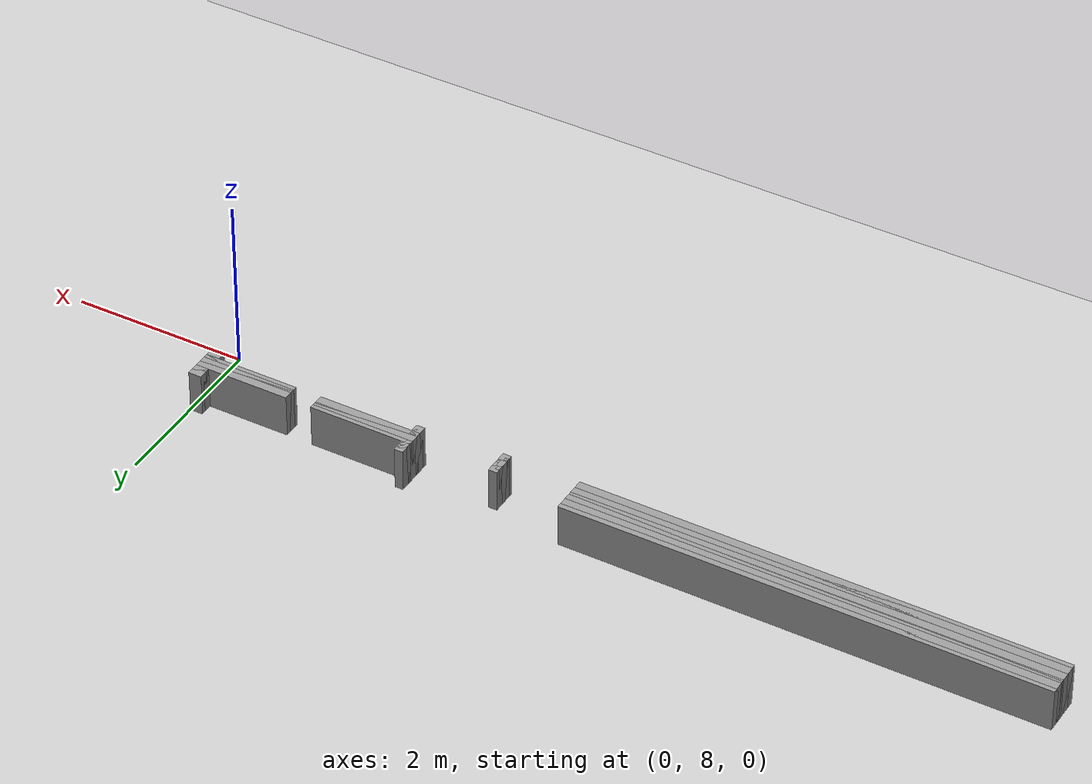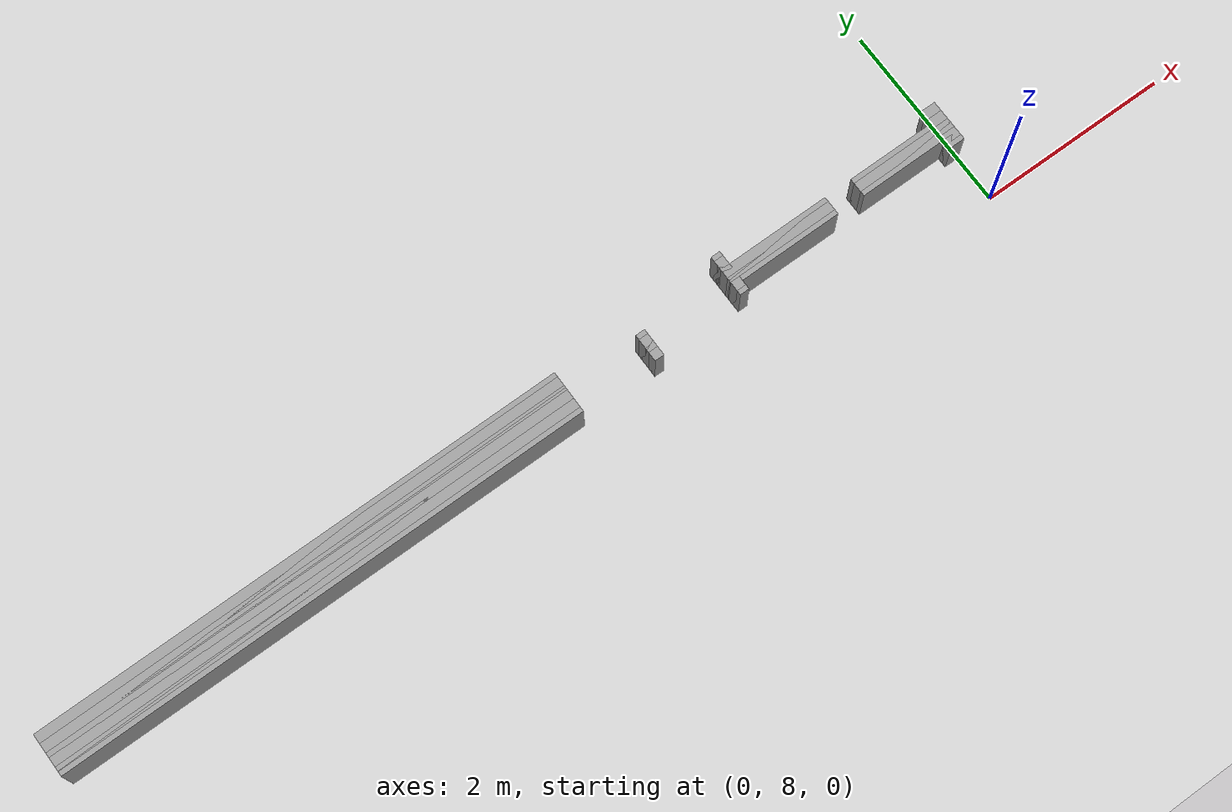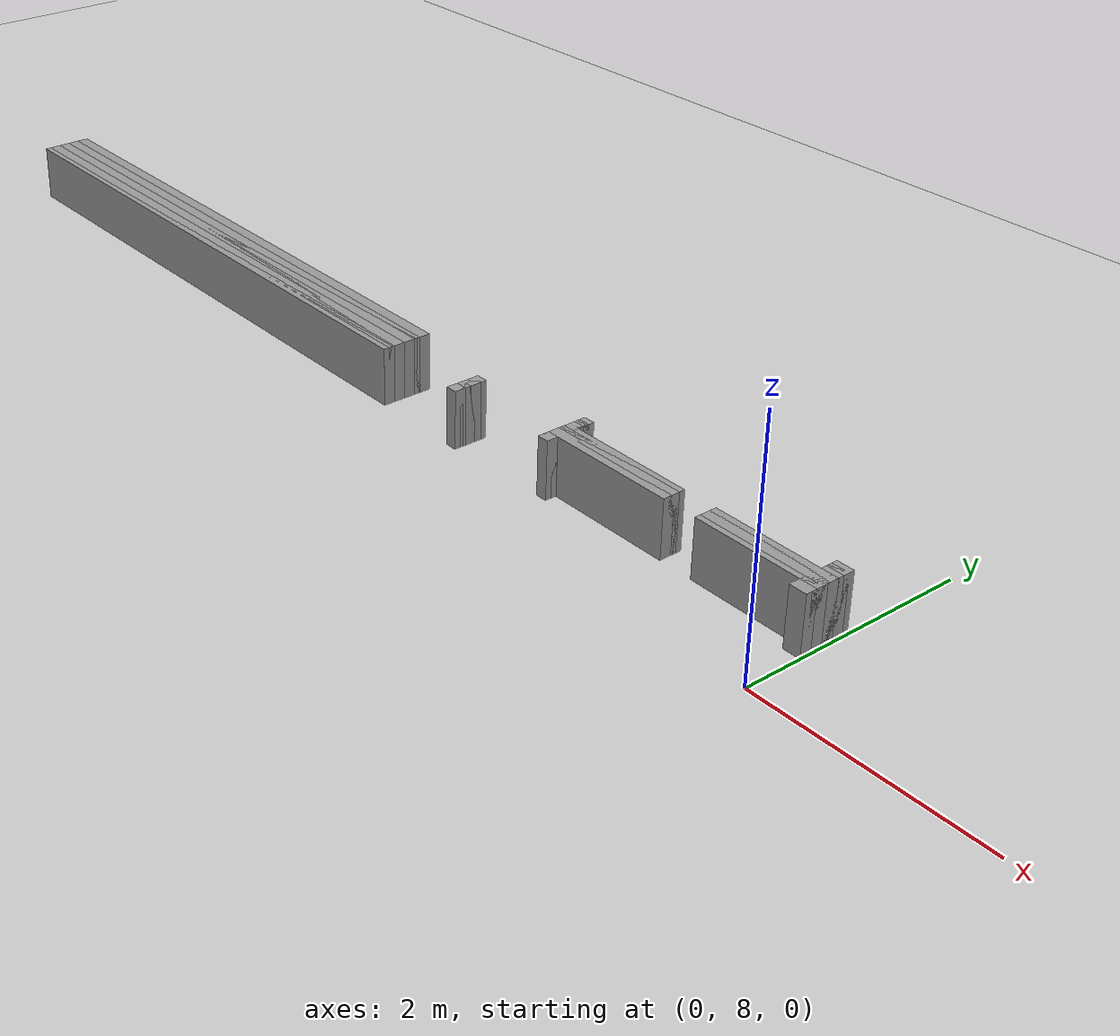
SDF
<sdf version="1.6">
 <world name="GridMap">
  <include><uri>model://sun</uri></include>
  <include><uri>model://ground_plane</uri></include>
  <model name="GridMap">
   <link name="Wall_(71.0,170.0)">
    <collision name="Wall_(71.0,170.0)_Collision">
     <geometry><box><size>0.1 0.1 0.5</size></box></geometry>
     <pose>-3.5500000000000003 8.5 0.25 0 -0 0</pose>
    </collision>
    <inertial>
     <mass>0.5</mass>
     <pose>0 0.01 0 0 0 0</pose>
     <inertia><ixx>0.004</ixx><ixy>0.001</ixy><ixz>0</ixz><iyy>0.006</iyy><iyz>0</iyz><izz>0.007</izz></inertia>
    </inertial>
    <visual name="Wall_(71.0,170.0)_Visual">
     <geometry><box><size>0.1 0.1 0.5</size></box></geometry>
     <pose>-3.5500000000000003 8.5 0.25 0 -0 0</pose>
     <material>
      <script><uri>file://media/materials/scripts/gazebo.material</uri><name>Gazebo/Grey</name></script>
      <ambient>1 1 1 1</ambient>
     </material>
     <meta><layer>0</layer></meta>
    </visual>
   </link>
   <link name="Wall_(143.5,170.0)">
    <collision name="Wall_(143.5,170.0)_Collision">
     <geometry><box><size>5.550000000000001 0.1 0.5</size></box></geometry>
     <pose>-7.175000000000001 8.5 0.25 0 -0 0</pose>
    </collision>
    <inertial>
     <mass>0.5</mass>
     <pose>0 0.01 0 0 0 0</pose>
     <inertia><ixx>0.004</ixx><ixy>0.001</ixy><ixz>0</ixz><iyy>0.006</iyy><iyz>0</iyz><izz>0.007</izz></inertia>
    </inertial>
    <visual name="Wall_(143.5,170.0)_Visual">
     <geometry><box><size>5.550000000000001 0.1 0.5</size></box></geometry>
     <pose>-7.175000000000001 8.5 0.25 0 -0 0</pose>
     <material>
      <script><uri>file://media/materials/scripts/gazebo.material</uri><name>Gazebo/Grey</name></script>
      <ambient>1 1 1 1</ambient>
     </material>
     <meta><layer>0</layer></meta>
    </visual>
   </link>
   <link name="Wall_(1.5,171.0)">
    <collision name="Wall_(1.5,171.0)_Collision">
     <geometry><box><size>0.15000000000000002 0.1 0.5</size></box></geometry>
     <pose>-0.07500000000000001 8.55 0.25 0 -0 0</pose>
    </collision>
    <inertial>
     <mass>0.5</mass>
     <pose>0 0.01 0 0 0 0</pose>
     <inertia><ixx>0.004</ixx><ixy>0.001</ixy><ixz>0</ixz><iyy>0.006</iyy><iyz>0</iyz><izz>0.007</izz></inertia>
    </inertial>
    <visual name="Wall_(1.5,171.0)_Visual">
     <geometry><box><size>0.15000000000000002 0.1 0.5</size></box></geometry>
     <pose>-0.07500000000000001 8.55 0.25 0 -0 0</pose>
     <material>
      <script><uri>file://media/materials/scripts/gazebo.material</uri><name>Gazebo/Grey</name></script>
      <ambient>1 1 1 1</ambient>
     </material>
     <meta><layer>0</layer></meta>
    </visual>
   </link>
   <link name="Wall_(51.0,171.0)">
    <collision name="Wall_(51.0,171.0)_Collision">
     <geometry><box><size>0.1 0.1 0.5</size></box></geometry>
     <pose>-2.5500000000000003 8.55 0.25 0 -0 0</pose>
    </collision>
    <inertial>
     <mass>0.5</mass>
     <pose>0 0.01 0 0 0 0</pose>
     <inertia><ixx>0.004</ixx><ixy>0.001</ixy><ixz>0</ixz><iyy>0.006</iyy><iyz>0</iyz><izz>0.007</izz></inertia>
    </inertial>
    <visual name="Wall_(51.0,171.0)_Visual">
     <geometry><box><size>0.1 0.1 0.5</size></box></geometry>
     <pose>-2.5500000000000003 8.55 0.25 0 -0 0</pose>
     <material>
      <script><uri>file://media/materials/scripts/gazebo.material</uri><name>Gazebo/Grey</name></script>
      <ambient>1 1 1 1</ambient>
     </material>
     <meta><layer>0</layer></meta>
    </visual>
   </link>
   <link name="Wall_(71.0,171.0)">
    <collision name="Wall_(71.0,171.0)_Collision">
     <geometry><box><size>0.1 0.1 0.5</size></box></geometry>
     <pose>-3.5500000000000003 8.55 0.25 0 -0 0</pose>
    </collision>
    <inertial>
     <mass>0.5</mass>
     <pose>0 0.01 0 0 0 0</pose>
     <inertia><ixx>0.004</ixx><ixy>0.001</ixy><ixz>0</ixz><iyy>0.006</iyy><iyz>0</iyz><izz>0.007</izz></inertia>
    </inertial>
    <visual name="Wall_(71.0,171.0)_Visual">
     <geometry><box><size>0.1 0.1 0.5</size></box></geometry>
     <pose>-3.5500000000000003 8.55 0.25 0 -0 0</pose>
     <material>
      <script><uri>file://media/materials/scripts/gazebo.material</uri><name>Gazebo/Grey</name></script>
      <ambient>1 1 1 1</ambient>
     </material>
     <meta><layer>0</layer></meta>
    </visual>
   </link>
   <link name="Wall_(143.5,171.0)">
    <collision name="Wall_(143.5,171.0)_Collision">
     <geometry><box><size>5.550000000000001 0.1 0.5</size></box></geometry>
     <pose>-7.175000000000001 8.55 0.25 0 -0 0</pose>
    </collision>
    <inertial>
     <mass>0.5</mass>
     <pose>0 0.01 0 0 0 0</pose>
     <inertia><ixx>0.004</ixx><ixy>0.001</ixy><ixz>0</ixz><iyy>0.006</iyy><iyz>0</iyz><izz>0.007</izz></inertia>
    </inertial>
    <visual name="Wall_(143.5,171.0)_Visual">
     <geometry><box><size>5.550000000000001 0.1 0.5</size></box></geometry>
     <pose>-7.175000000000001 8.55 0.25 0 -0 0</pose>
     <material>
      <script><uri>file://media/materials/scripts/gazebo.material</uri><name>Gazebo/Grey</name></script>
      <ambient>1 1 1 1</ambient>
     </material>
     <meta><layer>0</layer></meta>
    </visual>
   </link>
   <link name="Wall_(1.5,172.0)">
    <collision name="Wall_(1.5,172.0)_Collision">
     <geometry><box><size>0.15000000000000002 0.1 0.5</size></box></geometry>
     <pose>-0.07500000000000001 8.6 0.25 0 -0 0</pose>
    </collision>
    <inertial>
     <mass>0.5</mass>
     <pose>0 0.01 0 0 0 0</pose>
     <inertia><ixx>0.004</ixx><ixy>0.001</ixy><ixz>0</ixz><iyy>0.006</iyy><iyz>0</iyz><izz>0.007</izz></inertia>
    </inertial>
    <visual name="Wall_(1.5,172.0)_Visual">
     <geometry><box><size>0.15000000000000002 0.1 0.5</size></box></geometry>
     <pose>-0.07500000000000001 8.6 0.25 0 -0 0</pose>
     <material>
      <script><uri>file://media/materials/scripts/gazebo.material</uri><name>Gazebo/Grey</name></script>
      <ambient>1 1 1 1</ambient>
     </material>
     <meta><layer>0</layer></meta>
    </visual>
   </link>
   <link name="Wall_(51.0,172.0)">
    <collision name="Wall_(51.0,172.0)_Collision">
     <geometry><box><size>0.1 0.1 0.5</size></box></geometry>
     <pose>-2.5500000000000003 8.6 0.25 0 -0 0</pose>
    </collision>
    <inertial>
     <mass>0.5</mass>
     <pose>0 0.01 0 0 0 0</pose>
     <inertia><ixx>0.004</ixx><ixy>0.001</ixy><ixz>0</ixz><iyy>0.006</iyy><iyz>0</iyz><izz>0.007</izz></inertia>
    </inertial>
    <visual name="Wall_(51.0,172.0)_Visual">
     <geometry><box><size>0.1 0.1 0.5</size></box></geometry>
     <pose>-2.5500000000000003 8.6 0.25 0 -0 0</pose>
     <material>
      <script><uri>file://media/materials/scripts/gazebo.material</uri><name>Gazebo/Grey</name></script>
      <ambient>1 1 1 1</ambient>
     </material>
     <meta><layer>0</layer></meta>
    </visual>
   </link>
   <link name="Wall_(71.0,172.0)">
    <collision name="Wall_(71.0,172.0)_Collision">
     <geometry><box><size>0.1 0.1 0.5</size></box></geometry>
     <pose>-3.5500000000000003 8.6 0.25 0 -0 0</pose>
    </collision>
    <inertial>
     <mass>0.5</mass>
     <pose>0 0.01 0 0 0 0</pose>
     <inertia><ixx>0.004</ixx><ixy>0.001</ixy><ixz>0</ixz><iyy>0.006</iyy><iyz>0</iyz><izz>0.007</izz></inertia>
    </inertial>
    <visual name="Wall_(71.0,172.0)_Visual">
     <geometry><box><size>0.1 0.1 0.5</size></box></geometry>
     <pose>-3.5500000000000003 8.6 0.25 0 -0 0</pose>
     <material>
      <script><uri>file://media/materials/scripts/gazebo.material</uri><name>Gazebo/Grey</name></script>
      <ambient>1 1 1 1</ambient>
     </material>
     <meta><layer>0</layer></meta>
    </visual>
   </link>
   <link name="Wall_(143.5,172.0)">
    <collision name="Wall_(143.5,172.0)_Collision">
     <geometry><box><size>5.550000000000001 0.1 0.5</size></box></geometry>
     <pose>-7.175000000000001 8.6 0.25 0 -0 0</pose>
    </collision>
    <inertial>
     <mass>0.5</mass>
     <pose>0 0.01 0 0 0 0</pose>
     <inertia><ixx>0.004</ixx><ixy>0.001</ixy><ixz>0</ixz><iyy>0.006</iyy><iyz>0</iyz><izz>0.007</izz></inertia>
    </inertial>
    <visual name="Wall_(143.5,172.0)_Visual">
     <geometry><box><size>5.550000000000001 0.1 0.5</size></box></geometry>
     <pose>-7.175000000000001 8.6 0.25 0 -0 0</pose>
     <material>
      <script><uri>file://media/materials/scripts/gazebo.material</uri><name>Gazebo/Grey</name></script>
      <ambient>1 1 1 1</ambient>
     </material>
     <meta><layer>0</layer></meta>
    </visual>
   </link>
   <link name="Wall_(11.0,173.0)">
    <collision name="Wall_(11.0,173.0)_Collision">
     <geometry><box><size>1.1 0.1 0.5</size></box></geometry>
     <pose>-0.55 8.65 0.25 0 -0 0</pose>
    </collision>
    <inertial>
     <mass>0.5</mass>
     <pose>0 0.01 0 0 0 0</pose>
     <inertia><ixx>0.004</ixx><ixy>0.001</ixy><ixz>0</ixz><iyy>0.006</iyy><iyz>0</iyz><izz>0.007</izz></inertia>
    </inertial>
    <visual name="Wall_(11.0,173.0)_Visual">
     <geometry><box><size>1.1 0.1 0.5</size></box></geometry>
     <pose>-0.55 8.65 0.25 0 -0 0</pose>
     <material>
      <script><uri>file://media/materials/scripts/gazebo.material</uri><name>Gazebo/Grey</name></script>
      <ambient>1 1 1 1</ambient>
     </material>
     <meta><layer>0</layer></meta>
    </visual>
   </link>
   <link name="Wall_(40.0,173.0)">
    <collision name="Wall_(40.0,173.0)_Collision">
     <geometry><box><size>1.2000000000000002 0.1 0.5</size></box></geometry>
     <pose>-2.0 8.65 0.25 0 -0 0</pose>
    </collision>
    <inertial>
     <mass>0.5</mass>
     <pose>0 0.01 0 0 0 0</pose>
     <inertia><ixx>0.004</ixx><ixy>0.001</ixy><ixz>0</ixz><iyy>0.006</iyy><iyz>0</iyz><izz>0.007</izz></inertia>
    </inertial>
    <visual name="Wall_(40.0,173.0)_Visual">
     <geometry><box><size>1.2000000000000002 0.1 0.5</size></box></geometry>
     <pose>-2.0 8.65 0.25 0 -0 0</pose>
     <material>
      <script><uri>file://media/materials/scripts/gazebo.material</uri><name>Gazebo/Grey</name></script>
      <ambient>1 1 1 1</ambient>
     </material>
     <meta><layer>0</layer></meta>
    </visual>
   </link>
   <link name="Wall_(71.0,173.0)">
    <collision name="Wall_(71.0,173.0)_Collision">
     <geometry><box><size>0.1 0.1 0.5</size></box></geometry>
     <pose>-3.5500000000000003 8.65 0.25 0 -0 0</pose>
    </collision>
    <inertial>
     <mass>0.5</mass>
     <pose>0 0.01 0 0 0 0</pose>
     <inertia><ixx>0.004</ixx><ixy>0.001</ixy><ixz>0</ixz><iyy>0.006</iyy><iyz>0</iyz><izz>0.007</izz></inertia>
    </inertial>
    <visual name="Wall_(71.0,173.0)_Visual">
     <geometry><box><size>0.1 0.1 0.5</size></box></geometry>
     <pose>-3.5500000000000003 8.65 0.25 0 -0 0</pose>
     <material>
      <script><uri>file://media/materials/scripts/gazebo.material</uri><name>Gazebo/Grey</name></script>
      <ambient>1 1 1 1</ambient>
     </material>
     <meta><layer>0</layer></meta>
    </visual>
   </link>
   <link name="Wall_(143.5,173.0)">
    <collision name="Wall_(143.5,173.0)_Collision">
     <geometry><box><size>5.550000000000001 0.1 0.5</size></box></geometry>
     <pose>-7.175000000000001 8.65 0.25 0 -0 0</pose>
    </collision>
    <inertial>
     <mass>0.5</mass>
     <pose>0 0.01 0 0 0 0</pose>
     <inertia><ixx>0.004</ixx><ixy>0.001</ixy><ixz>0</ixz><iyy>0.006</iyy><iyz>0</iyz><izz>0.007</izz></inertia>
    </inertial>
    <visual name="Wall_(143.5,173.0)_Visual">
     <geometry><box><size>5.550000000000001 0.1 0.5</size></box></geometry>
     <pose>-7.175000000000001 8.65 0.25 0 -0 0</pose>
     <material>
      <script><uri>file://media/materials/scripts/gazebo.material</uri><name>Gazebo/Grey</name></script>
      <ambient>1 1 1 1</ambient>
     </material>
     <meta><layer>0</layer></meta>
    </visual>
   </link>
   <link name="Wall_(11.0,174.0)">
    <collision name="Wall_(11.0,174.0)_Collision">
     <geometry><box><size>1.1 0.1 0.5</size></box></geometry>
     <pose>-0.55 8.700000000000001 0.25 0 -0 0</pose>
    </collision>
    <inertial>
     <mass>0.5</mass>
     <pose>0 0.01 0 0 0 0</pose>
     <inertia><ixx>0.004</ixx><ixy>0.001</ixy><ixz>0</ixz><iyy>0.006</iyy><iyz>0</iyz><izz>0.007</izz></inertia>
    </inertial>
    <visual name="Wall_(11.0,174.0)_Visual">
     <geometry><box><size>1.1 0.1 0.5</size></box></geometry>
     <pose>-0.55 8.700000000000001 0.25 0 -0 0</pose>
     <material>
      <script><uri>file://media/materials/scripts/gazebo.material</uri><name>Gazebo/Grey</name></script>
      <ambient>1 1 1 1</ambient>
     </material>
     <meta><layer>0</layer></meta>
    </visual>
   </link>
   <link name="Wall_(40.0,174.0)">
    <collision name="Wall_(40.0,174.0)_Collision">
     <geometry><box><size>1.2000000000000002 0.1 0.5</size></box></geometry>
     <pose>-2.0 8.700000000000001 0.25 0 -0 0</pose>
    </collision>
    <inertial>
     <mass>0.5</mass>
     <pose>0 0.01 0 0 0 0</pose>
     <inertia><ixx>0.004</ixx><ixy>0.001</ixy><ixz>0</ixz><iyy>0.006</iyy><iyz>0</iyz><izz>0.007</izz></inertia>
    </inertial>
    <visual name="Wall_(40.0,174.0)_Visual">
     <geometry><box><size>1.2000000000000002 0.1 0.5</size></box></geometry>
     <pose>-2.0 8.700000000000001 0.25 0 -0 0</pose>
     <material>
      <script><uri>file://media/materials/scripts/gazebo.material</uri><name>Gazebo/Grey</name></script>
      <ambient>1 1 1 1</ambient>
     </material>
     <meta><layer>0</layer></meta>
    </visual>
   </link>
   <link name="Wall_(71.0,174.0)">
    <collision name="Wall_(71.0,174.0)_Collision">
     <geometry><box><size>0.1 0.1 0.5</size></box></geometry>
     <pose>-3.5500000000000003 8.700000000000001 0.25 0 -0 0</pose>
    </collision>
    <inertial>
     <mass>0.5</mass>
     <pose>0 0.01 0 0 0 0</pose>
     <inertia><ixx>0.004</ixx><ixy>0.001</ixy><ixz>0</ixz><iyy>0.006</iyy><iyz>0</iyz><izz>0.007</izz></inertia>
    </inertial>
    <visual name="Wall_(71.0,174.0)_Visual">
     <geometry><box><size>0.1 0.1 0.5</size></box></geometry>
     <pose>-3.5500000000000003 8.700000000000001 0.25 0 -0 0</pose>
     <material>
      <script><uri>file://media/materials/scripts/gazebo.material</uri><name>Gazebo/Grey</name></script>
      <ambient>1 1 1 1</ambient>
     </material>
     <meta><layer>0</layer></meta>
    </visual>
   </link>
   <link name="Wall_(143.5,174.0)">
    <collision name="Wall_(143.5,174.0)_Collision">
     <geometry><box><size>5.550000000000001 0.1 0.5</size></box></geometry>
     <pose>-7.175000000000001 8.700000000000001 0.25 0 -0 0</pose>
    </collision>
    <inertial>
     <mass>0.5</mass>
     <pose>0 0.01 0 0 0 0</pose>
     <inertia><ixx>0.004</ixx><ixy>0.001</ixy><ixz>0</ixz><iyy>0.006</iyy><iyz>0</iyz><izz>0.007</izz></inertia>
    </inertial>
    <visual name="Wall_(143.5,174.0)_Visual">
     <geometry><box><size>5.550000000000001 0.1 0.5</size></box></geometry>
     <pose>-7.175000000000001 8.700000000000001 0.25 0 -0 0</pose>
     <material>
      <script><uri>file://media/materials/scripts/gazebo.material</uri><name>Gazebo/Grey</name></script>
      <ambient>1 1 1 1</ambient>
     </material>
     <meta><layer>0</layer></meta>
    </visual>
   </link>
   <link name="Wall_(11.0,175.0)">
    <collision name="Wall_(11.0,175.0)_Collision">
     <geometry><box><size>1.1 0.1 0.5</size></box></geometry>
     <pose>-0.55 8.75 0.25 0 -0 0</pose>
    </collision>
    <inertial>
     <mass>0.5</mass>
     <pose>0 0.01 0 0 0 0</pose>
     <inertia><ixx>0.004</ixx><ixy>0.001</ixy><ixz>0</ixz><iyy>0.006</iyy><iyz>0</iyz><izz>0.007</izz></inertia>
    </inertial>
    <visual name="Wall_(11.0,175.0)_Visual">
     <geometry><box><size>1.1 0.1 0.5</size></box></geometry>
     <pose>-0.55 8.75 0.25 0 -0 0</pose>
     <material>
      <script><uri>file://media/materials/scripts/gazebo.material</uri><name>Gazebo/Grey</name></script>
      <ambient>1 1 1 1</ambient>
     </material>
     <meta><layer>0</layer></meta>
    </visual>
   </link>
   <link name="Wall_(40.0,175.0)">
    <collision name="Wall_(40.0,175.0)_Collision">
     <geometry><box><size>1.2000000000000002 0.1 0.5</size></box></geometry>
     <pose>-2.0 8.75 0.25 0 -0 0</pose>
    </collision>
    <inertial>
     <mass>0.5</mass>
     <pose>0 0.01 0 0 0 0</pose>
     <inertia><ixx>0.004</ixx><ixy>0.001</ixy><ixz>0</ixz><iyy>0.006</iyy><iyz>0</iyz><izz>0.007</izz></inertia>
    </inertial>
    <visual name="Wall_(40.0,175.0)_Visual">
     <geometry><box><size>1.2000000000000002 0.1 0.5</size></box></geometry>
     <pose>-2.0 8.75 0.25 0 -0 0</pose>
     <material>
      <script><uri>file://media/materials/scripts/gazebo.material</uri><name>Gazebo/Grey</name></script>
      <ambient>1 1 1 1</ambient>
     </material>
     <meta><layer>0</layer></meta>
    </visual>
   </link>
   <link name="Wall_(143.5,175.0)">
    <collision name="Wall_(143.5,175.0)_Collision">
     <geometry><box><size>5.550000000000001 0.1 0.5</size></box></geometry>
     <pose>-7.175000000000001 8.75 0.25 0 -0 0</pose>
    </collision>
    <inertial>
     <mass>0.5</mass>
     <pose>0 0.01 0 0 0 0</pose>
     <inertia><ixx>0.004</ixx><ixy>0.001</ixy><ixz>0</ixz><iyy>0.006</iyy><iyz>0</iyz><izz>0.007</izz></inertia>
    </inertial>
    <visual name="Wall_(143.5,175.0)_Visual">
     <geometry><box><size>5.550000000000001 0.1 0.5</size></box></geometry>
     <pose>-7.175000000000001 8.75 0.25 0 -0 0</pose>
     <material>
      <script><uri>file://media/materials/scripts/gazebo.material</uri><name>Gazebo/Grey</name></script>
      <ambient>1 1 1 1</ambient>
     </material>
     <meta><layer>0</layer></meta>
    </visual>
   </link>
   <link name="Wall_(1.5,176.0)">
    <collision name="Wall_(1.5,176.0)_Collision">
     <geometry><box><size>0.15000000000000002 0.1 0.5</size></box></geometry>
     <pose>-0.07500000000000001 8.8 0.25 0 -0 0</pose>
    </collision>
    <inertial>
     <mass>0.5</mass>
     <pose>0 0.01 0 0 0 0</pose>
     <inertia><ixx>0.004</ixx><ixy>0.001</ixy><ixz>0</ixz><iyy>0.006</iyy><iyz>0</iyz><izz>0.007</izz></inertia>
    </inertial>
    <visual name="Wall_(1.5,176.0)_Visual">
     <geometry><box><size>0.15000000000000002 0.1 0.5</size></box></geometry>
     <pose>-0.07500000000000001 8.8 0.25 0 -0 0</pose>
     <material>
      <script><uri>file://media/materials/scripts/gazebo.material</uri><name>Gazebo/Grey</name></script>
      <ambient>1 1 1 1</ambient>
     </material>
     <meta><layer>0</layer></meta>
    </visual>
   </link>
   <link name="Wall_(51.0,176.0)">
    <collision name="Wall_(51.0,176.0)_Collision">
     <geometry><box><size>0.1 0.1 0.5</size></box></geometry>
     <pose>-2.5500000000000003 8.8 0.25 0 -0 0</pose>
    </collision>
    <inertial>
     <mass>0.5</mass>
     <pose>0 0.01 0 0 0 0</pose>
     <inertia><ixx>0.004</ixx><ixy>0.001</ixy><ixz>0</ixz><iyy>0.006</iyy><iyz>0</iyz><izz>0.007</izz></inertia>
    </inertial>
    <visual name="Wall_(51.0,176.0)_Visual">
     <geometry><box><size>0.1 0.1 0.5</size></box></geometry>
     <pose>-2.5500000000000003 8.8 0.25 0 -0 0</pose>
     <material>
      <script><uri>file://media/materials/scripts/gazebo.material</uri><name>Gazebo/Grey</name></script>
      <ambient>1 1 1 1</ambient>
     </material>
     <meta><layer>0</layer></meta>
    </visual>
   </link>
   <link name="Wall_(143.5,176.0)">
    <collision name="Wall_(143.5,176.0)_Collision">
     <geometry><box><size>5.550000000000001 0.1 0.5</size></box></geometry>
     <pose>-7.175000000000001 8.8 0.25 0 -0 0</pose>
    </collision>
    <inertial>
     <mass>0.5</mass>
     <pose>0 0.01 0 0 0 0</pose>
     <inertia><ixx>0.004</ixx><ixy>0.001</ixy><ixz>0</ixz><iyy>0.006</iyy><iyz>0</iyz><izz>0.007</izz></inertia>
    </inertial>
    <visual name="Wall_(143.5,176.0)_Visual">
     <geometry><box><size>5.550000000000001 0.1 0.5</size></box></geometry>
     <pose>-7.175000000000001 8.8 0.25 0 -0 0</pose>
     <material>
      <script><uri>file://media/materials/scripts/gazebo.material</uri><name>Gazebo/Grey</name></script>
      <ambient>1 1 1 1</ambient>
     </material>
     <meta><layer>0</layer></meta>
    </visual>
   </link>
   <link name="Wall_(1.5,177.0)">
    <collision name="Wall_(1.5,177.0)_Collision">
     <geometry><box><size>0.15000000000000002 0.1 0.5</size></box></geometry>
     <pose>-0.07500000000000001 8.85 0.25 0 -0 0</pose>
    </collision>
    <inertial>
     <mass>0.5</mass>
     <pose>0 0.01 0 0 0 0</pose>
     <inertia><ixx>0.004</ixx><ixy>0.001</ixy><ixz>0</ixz><iyy>0.006</iyy><iyz>0</iyz><izz>0.007</izz></inertia>
    </inertial>
    <visual name="Wall_(1.5,177.0)_Visual">
     <geometry><box><size>0.15000000000000002 0.1 0.5</size></box></geometry>
     <pose>-0.07500000000000001 8.85 0.25 0 -0 0</pose>
     <material>
      <script><uri>file://media/materials/scripts/gazebo.material</uri><name>Gazebo/Grey</name></script>
      <ambient>1 1 1 1</ambient>
     </material>
     <meta><layer>0</layer></meta>
    </visual>
   </link>
   <link name="Wall_(51.0,177.0)">
    <collision name="Wall_(51.0,177.0)_Collision">
     <geometry><box><size>0.1 0.1 0.5</size></box></geometry>
     <pose>-2.5500000000000003 8.85 0.25 0 -0 0</pose>
    </collision>
    <inertial>
     <mass>0.5</mass>
     <pose>0 0.01 0 0 0 0</pose>
     <inertia><ixx>0.004</ixx><ixy>0.001</ixy><ixz>0</ixz><iyy>0.006</iyy><iyz>0</iyz><izz>0.007</izz></inertia>
    </inertial>
    <visual name="Wall_(51.0,177.0)_Visual">
     <geometry><box><size>0.1 0.1 0.5</size></box></geometry>
     <pose>-2.5500000000000003 8.85 0.25 0 -0 0</pose>
     <material>
      <script><uri>file://media/materials/scripts/gazebo.material</uri><name>Gazebo/Grey</name></script>
      <ambient>1 1 1 1</ambient>
     </material>
     <meta><layer>0</layer></meta>
    </visual>
   </link>
   <link name="Wall_(143.5,177.0)">
    <collision name="Wall_(143.5,177.0)_Collision">
     <geometry><box><size>5.550000000000001 0.1 0.5</size></box></geometry>
     <pose>-7.175000000000001 8.85 0.25 0 -0 0</pose>
    </collision>
    <inertial>
     <mass>0.5</mass>
     <pose>0 0.01 0 0 0 0</pose>
     <inertia><ixx>0.004</ixx><ixy>0.001</ixy><ixz>0</ixz><iyy>0.006</iyy><iyz>0</iyz><izz>0.007</izz></inertia>
    </inertial>
    <visual name="Wall_(143.5,177.0)_Visual">
     <geometry><box><size>5.550000000000001 0.1 0.5</size></box></geometry>
     <pose>-7.175000000000001 8.85 0.25 0 -0 0</pose>
     <material>
      <script><uri>file://media/materials/scripts/gazebo.material</uri><name>Gazebo/Grey</name></script>
      <ambient>1 1 1 1</ambient>
     </material>
     <meta><layer>0</layer></meta>
    </visual>
   </link>
   <link name="Wall_(1.5,178.0)">
    <collision name="Wall_(1.5,178.0)_Collision">
     <geometry><box><size>0.15000000000000002 0.1 0.5</size></box></geometry>
     <pose>-0.07500000000000001 8.9 0.25 0 -0 0</pose>
    </collision>
    <inertial>
     <mass>0.5</mass>
     <pose>0 0.01 0 0 0 0</pose>
     <inertia><ixx>0.004</ixx><ixy>0.001</ixy><ixz>0</ixz><iyy>0.006</iyy><iyz>0</iyz><izz>0.007</izz></inertia>
    </inertial>
    <visual name="Wall_(1.5,178.0)_Visual">
     <geometry><box><size>0.15000000000000002 0.1 0.5</size></box></geometry>
     <pose>-0.07500000000000001 8.9 0.25 0 -0 0</pose>
     <material>
      <script><uri>file://media/materials/scripts/gazebo.material</uri><name>Gazebo/Grey</name></script>
      <ambient>1 1 1 1</ambient>
     </material>
     <meta><layer>0</layer></meta>
    </visual>
   </link>
   <link name="Wall_(51.0,178.0)">
    <collision name="Wall_(51.0,178.0)_Collision">
     <geometry><box><size>0.1 0.1 0.5</size></box></geometry>
     <pose>-2.5500000000000003 8.9 0.25 0 -0 0</pose>
    </collision>
    <inertial>
     <mass>0.5</mass>
     <pose>0 0.01 0 0 0 0</pose>
     <inertia><ixx>0.004</ixx><ixy>0.001</ixy><ixz>0</ixz><iyy>0.006</iyy><iyz>0</iyz><izz>0.007</izz></inertia>
    </inertial>
    <visual name="Wall_(51.0,178.0)_Visual">
     <geometry><box><size>0.1 0.1 0.5</size></box></geometry>
     <pose>-2.5500000000000003 8.9 0.25 0 -0 0</pose>
     <material>
      <script><uri>file://media/materials/scripts/gazebo.material</uri><name>Gazebo/Grey</name></script>
      <ambient>1 1 1 1</ambient>
     </material>
     <meta><layer>0</layer></meta>
    </visual>
   </link>
   <static>1</static>
  </model>
 </world>
</sdf>
